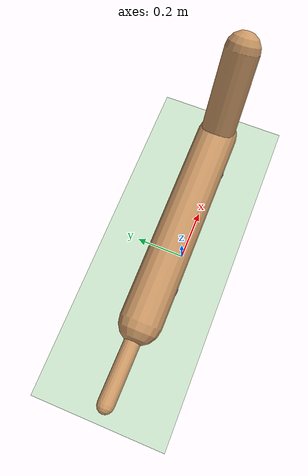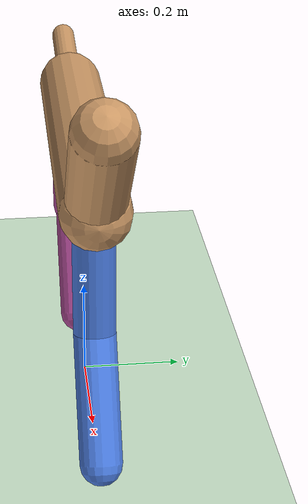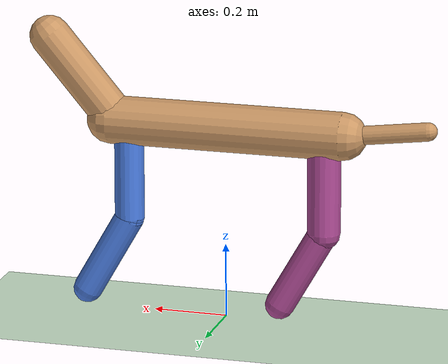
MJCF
<?xml version="1.0" encoding="utf-8"?>
<mujoco model="pilot_p2">
  <compiler angle="degree" inertiafromgeom="true" />
  <option integrator="RK4" timestep="0.002" />
  <visual>
    <global offwidth="1920" offheight="1080" />
  </visual>
  <default>
    <joint armature="0.01" damping="0.1" limited="true" />
    <geom conaffinity="0" condim="3" contype="1" density="1000" friction="0.9 0.1 0.1" rgba="0.8 0.6 0.4 1" />
  </default>
  <asset>
    <texture type="skybox" builtin="gradient" rgb1=".4 .5 .6" rgb2="0 0 0" width="100" height="100" />
    <texture builtin="checker" height="100" name="texplane" rgb1="0 0 0" rgb2="0.8 0.8 0.8" type="2d" width="100" />
    <material name="MatPlane" reflectance="0.5" shininess="1" specular="1" texrepeat="60 60" texture="texplane" />
  </asset>
  <worldbody>
    <light cutoff="100" diffuse="1 1 1" dir="0 0 -1.3" directional="true" exponent="1" pos="0 0 1.3" specular=".1 .1 .1" />
    <geom conaffinity="1" condim="3" name="floor" pos="0 0 0" rgba="0.8 0.9 0.8 1" size="100 100 100" type="plane" material="MatPlane" />
    <body name="torso" pos="0.0000 0.0000 0.5250">
      <camera name="track" mode="trackcom" pos="0 -3 -0.25" xyaxes="1 0 0 0 0 1" />
      <joint armature="0" axis="1 0 0" damping="0" limited="false" name="rootx" pos="0 0 0" stiffness="0" type="slide" />
      <joint armature="0" axis="0 0 1" damping="0" limited="false" name="rootz" pos="0 0 0" ref="0.5250" stiffness="0" type="slide" />
      <joint armature="0" axis="0 1 0" damping="0" limited="false" name="rooty" pos="0 0 0" stiffness="0" type="hinge" />
      <geom name="torso_geom" type="capsule" size="0.0650" rgba="0.8 0.6 0.4 1" friction="0.9" fromto="-0.3200 0.0000 0.0000 0.3200 0.0000 0.0000" />
      <body name="tail" pos="-0.3200 0.0000 0.0000">
        <joint axis="0 -1 0" name="tail_joint" pos="0 0 0" range="-45 45" type="hinge" />
        <geom name="tail_geom" type="capsule" size="0.0250" friction="0.9" rgba="0.8 0.6 0.4 1" fromto="0.0000 0.0000 0.0000 -0.2300 0.0000 0.0300" />
      </body>
      <body name="head" pos="0.3200 0.0000 0.0200">
        <joint axis="0 -1 0" name="head_joint" pos="0 0 0" range="-30 30" type="hinge" />
        <geom name="head_geom" type="capsule" size="0.0550" friction="0.9" rgba="0.8 0.6 0.4 1" fromto="0.0000 0.0000 0.0000 0.1700 0.0000 0.2000" />
      </body>
      <body name="back_upper" pos="-0.2700 0.0000 -0.0400">
        <joint axis="0 -1 0" name="back_upper_joint" pos="0 0 0" range="-70 70" type="hinge" />
        <geom name="back_upper_geom" type="capsule" size="0.0450" friction="0.9" rgba="0.7 0.3 0.6 1" fromto="0.0000 0.0000 0.0000 0.0000 0.0000 -0.2300" />
        <body name="back_lower" pos="0.0000 0.0000 -0.2300">
          <joint axis="0 -1 0" name="back_lower_joint" pos="0 0 0" range="-110 0" type="hinge" />
          <geom name="back_lower_geom" type="capsule" size="0.0400" friction="1.9" rgba="0.7 0.3 0.6 1" fromto="0.0000 0.0000 0.0000 0.1200 0.0000 -0.2100" />
        </body>
      </body>
      <body name="front_upper" pos="0.2700 0.0000 -0.0400">
        <joint axis="0 -1 0" name="front_upper_joint" pos="0 0 0" range="-70 70" type="hinge" />
        <geom name="front_upper_geom" type="capsule" size="0.0400" friction="0.9" rgba="0.3 0.5 0.9 1" fromto="0.0000 0.0000 0.0000 0.0000 0.0000 -0.2300" />
        <body name="front_lower" pos="0.0000 0.0000 -0.2300">
          <joint axis="0 -1 0" name="front_lower_joint" pos="0 0 0" range="-110 0" type="hinge" />
          <geom name="front_lower_geom" type="capsule" size="0.0400" friction="1.9" rgba="0.3 0.5 0.9 1" fromto="0.0000 0.0000 0.0000 0.1200 0.0000 -0.2100" />
        </body>
      </body>
    </body>
  </worldbody>
  <actuator>
    <motor ctrllimited="true" ctrlrange="-1.0 1.0" gear="82.7" joint="back_upper_joint" />
    <motor ctrllimited="true" ctrlrange="-1.0 1.0" gear="82.7" joint="back_lower_joint" />
    <motor ctrllimited="true" ctrlrange="-1.0 1.0" gear="82.7" joint="front_upper_joint" />
    <motor ctrllimited="true" ctrlrange="-1.0 1.0" gear="82.7" joint="front_lower_joint" />
  </actuator>
</mujoco>
